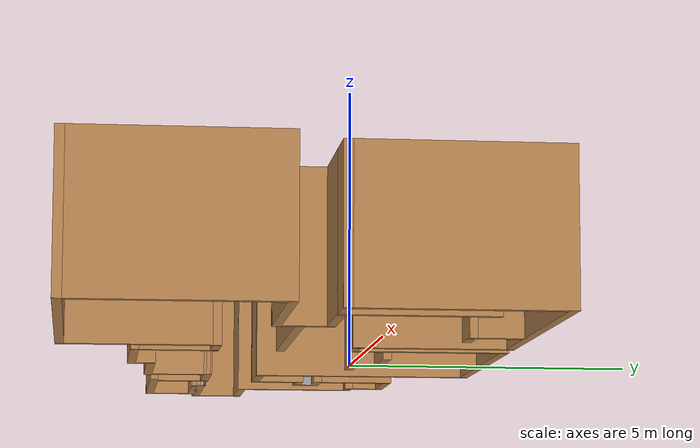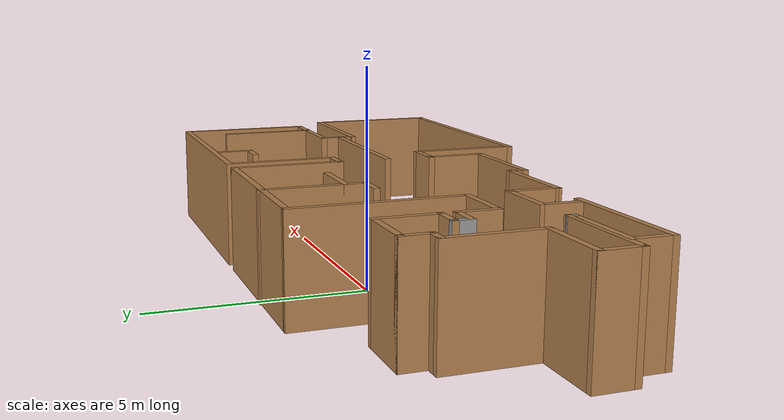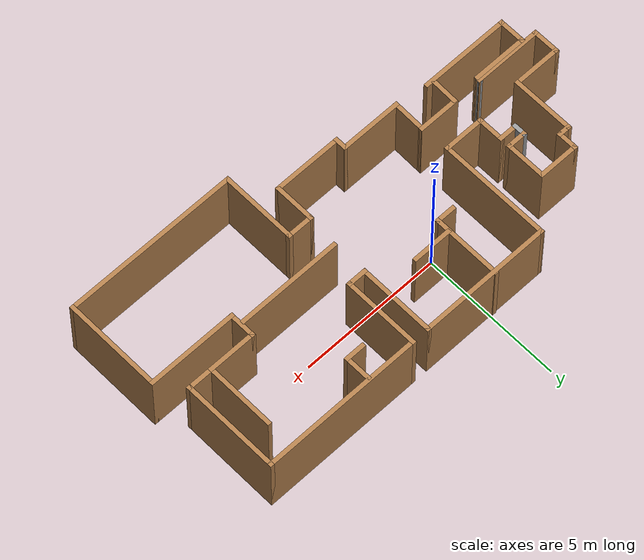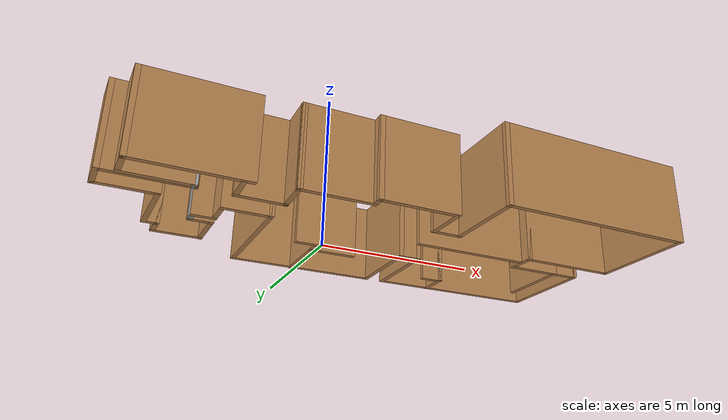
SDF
<?xml version='1.0'?>
<sdf version='1.6'>
  <model name='map_8'>
    <pose frame=''>1.34367 -1.36908 0 0 -0 0</pose>
    <link name='Wall_0'>
      <collision name='Wall_0_Collision'>
        <geometry>
          <box>
            <size>3.25 0.15 2.5</size>
          </box>
        </geometry>
        <pose frame=''>0 0 1.25 0 -0 0</pose>
      </collision>
      <visual name='Wall_0_Visual'>
        <pose frame=''>0 0 1.25 0 -0 0</pose>
        <geometry>
          <box>
            <size>3.25 0.15 2.5</size>
          </box>
        </geometry>
        <material>
          <script>
            <uri>file://media/materials/scripts/gazebo.material</uri>
            <name>Gazebo/Wood</name>
          </script>
          <ambient>1 1 1 1</ambient>
        </material>
        <meta>
          <layer>0</layer>
        </meta>
      </visual>
      <pose frame=''>-6.02588 -2.03852 0 0 -0 3.14159</pose>
    </link>
    <link name='Wall_1'>
      <collision name='Wall_1_Collision'>
        <geometry>
          <box>
            <size>1 0.15 2.5</size>
          </box>
        </geometry>
        <pose frame=''>0 0 1.25 0 -0 0</pose>
      </collision>
      <visual name='Wall_1_Visual'>
        <pose frame=''>0 0 1.25 0 -0 0</pose>
        <geometry>
          <box>
            <size>1 0.15 2.5</size>
          </box>
        </geometry>
        <material>
          <script>
            <uri>file://media/materials/scripts/gazebo.material</uri>
            <name>Gazebo/Wood</name>
          </script>
          <ambient>1 1 1 1</ambient>
        </material>
        <meta>
          <layer>0</layer>
        </meta>
      </visual>
      <pose frame=''>-7.57588 -1.61352 0 0 -0 1.5708</pose>
    </link>
    <link name='Wall_10'>
      <collision name='Wall_10_Collision'>
        <geometry>
          <box>
            <size>1.5 0.15 2.5</size>
          </box>
        </geometry>
        <pose frame=''>0 0 1.25 0 -0 0</pose>
      </collision>
      <visual name='Wall_10_Visual'>
        <pose frame=''>0 0 1.25 0 -0 0</pose>
        <geometry>
          <box>
            <size>1.5 0.15 2.5</size>
          </box>
        </geometry>
        <material>
          <script>
            <uri>file://media/materials/scripts/gazebo.material</uri>
            <name>Gazebo/Wood</name>
          </script>
          <ambient>1 1 1 1</ambient>
        </material>
        <meta>
          <layer>0</layer>
        </meta>
      </visual>
      <pose frame=''>-5.425 2.45807 0 0 -0 0</pose>
    </link>
    <link name='Wall_11'>
      <collision name='Wall_11_Collision'>
        <geometry>
          <box>
            <size>1.5 0.15 2.5</size>
          </box>
        </geometry>
        <pose frame=''>0 0 1.25 0 -0 0</pose>
      </collision>
      <visual name='Wall_11_Visual'>
        <pose frame=''>0 0 1.25 0 -0 0</pose>
        <geometry>
          <box>
            <size>1.5 0.15 2.5</size>
          </box>
        </geometry>
        <material>
          <script>
            <uri>file://media/materials/scripts/gazebo.material</uri>
            <name>Gazebo/Wood</name>
          </script>
          <ambient>1 1 1 1</ambient>
        </material>
        <meta>
          <layer>0</layer>
        </meta>
      </visual>
      <pose frame=''>-4.75 1.78307 0 0 -0 -1.5708</pose>
    </link>
    <link name='Wall_12'>
      <collision name='Wall_12_Collision'>
        <geometry>
          <box>
            <size>0.75 0.15 2.5</size>
          </box>
        </geometry>
        <pose frame=''>0 0 1.25 0 -0 0</pose>
      </collision>
      <visual name='Wall_12_Visual'>
        <pose frame=''>0 0 1.25 0 -0 0</pose>
        <geometry>
          <box>
            <size>0.75 0.15 2.5</size>
          </box>
        </geometry>
        <material>
          <script>
            <uri>file://media/materials/scripts/gazebo.material</uri>
            <name>Gazebo/Wood</name>
          </script>
          <ambient>1 1 1 1</ambient>
        </material>
        <meta>
          <layer>0</layer>
        </meta>
      </visual>
      <pose frame=''>-5.05 1.10807 0 0 -0 3.14159</pose>
    </link>
    <link name='Wall_13'>
      <collision name='Wall_13_Collision'>
        <geometry>
          <box>
            <size>0.5 0.15 2.5</size>
          </box>
        </geometry>
        <pose frame=''>0 0 1.25 0 -0 0</pose>
      </collision>
      <visual name='Wall_13_Visual'>
        <pose frame=''>0 0 1.25 0 -0 0</pose>
        <geometry>
          <box>
            <size>0.5 0.15 2.5</size>
          </box>
        </geometry>
        <material>
          <script>
            <uri>file://media/materials/scripts/gazebo.material</uri>
            <name>Gazebo/Grey</name>
          </script>
          <ambient>1 1 1 1</ambient>
        </material>
        <meta>
          <layer>0</layer>
        </meta>
      </visual>
      <pose frame=''>-5.35 0.933071 0 0 -0 -1.5708</pose>
    </link>
    <link name='Wall_14'>
      <collision name='Wall_14_Collision'>
        <geometry>
          <box>
            <size>0.75 0.15 2.5</size>
          </box>
        </geometry>
        <pose frame=''>0 0 1.25 0 -0 0</pose>
      </collision>
      <visual name='Wall_14_Visual'>
        <pose frame=''>0 0 1.25 0 -0 0</pose>
        <geometry>
          <box>
            <size>0.75 0.15 2.5</size>
          </box>
        </geometry>
        <material>
          <script>
            <uri>file://media/materials/scripts/gazebo.material</uri>
            <name>Gazebo/Wood</name>
          </script>
          <ambient>1 1 1 1</ambient>
        </material>
        <meta>
          <layer>0</layer>
        </meta>
      </visual>
      <pose frame=''>-5.05 0.758071 0 0 -0 0</pose>
    </link>
    <link name='Wall_15'>
      <collision name='Wall_15_Collision'>
        <geometry>
          <box>
            <size>1 0.15 2.5</size>
          </box>
        </geometry>
        <pose frame=''>0 0 1.25 0 -0 0</pose>
      </collision>
      <visual name='Wall_15_Visual'>
        <pose frame=''>0 0 1.25 0 -0 0</pose>
        <geometry>
          <box>
            <size>1 0.15 2.5</size>
          </box>
        </geometry>
        <material>
          <script>
            <uri>file://media/materials/scripts/gazebo.material</uri>
            <name>Gazebo/Wood</name>
          </script>
          <ambient>1 1 1 1</ambient>
        </material>
        <meta>
          <layer>0</layer>
        </meta>
      </visual>
      <pose frame=''>-4.75 0.333071 0 0 -0 -1.5708</pose>
    </link>
    <link name='Wall_16'>
      <collision name='Wall_16_Collision'>
        <geometry>
          <box>
            <size>1.5 0.15 2.5</size>
          </box>
        </geometry>
        <pose frame=''>0 0 1.25 0 -0 0</pose>
      </collision>
      <visual name='Wall_16_Visual'>
        <pose frame=''>0 0 1.25 0 -0 0</pose>
        <geometry>
          <box>
            <size>1.5 0.15 2.5</size>
          </box>
        </geometry>
        <material>
          <script>
            <uri>file://media/materials/scripts/gazebo.material</uri>
            <name>Gazebo/Wood</name>
          </script>
          <ambient>1 1 1 1</ambient>
        </material>
        <meta>
          <layer>0</layer>
        </meta>
      </visual>
      <pose frame=''>-4.075 -0.091929 0 0 -0 0</pose>
    </link>
    <link name='Wall_17'>
      <collision name='Wall_17_Collision'>
        <geometry>
          <box>
            <size>4 0.15 2.5</size>
          </box>
        </geometry>
        <pose frame=''>0 0 1.25 0 -0 0</pose>
      </collision>
      <visual name='Wall_17_Visual'>
        <pose frame=''>0 0 1.25 0 -0 0</pose>
        <geometry>
          <box>
            <size>4 0.15 2.5</size>
          </box>
        </geometry>
        <material>
          <script>
            <uri>file://media/materials/scripts/gazebo.material</uri>
            <name>Gazebo/Wood</name>
          </script>
          <ambient>1 1 1 1</ambient>
        </material>
        <meta>
          <layer>0</layer>
        </meta>
      </visual>
      <pose frame=''>-3.4 1.83307 0 0 -0 1.5708</pose>
    </link>
    <link name='Wall_18'>
      <collision name='Wall_18_Collision'>
        <geometry>
          <box>
            <size>4.75 0.15 2.5</size>
          </box>
        </geometry>
        <pose frame=''>0 0 1.25 0 -0 0</pose>
      </collision>
      <visual name='Wall_18_Visual'>
        <pose frame=''>0 0 1.25 0 -0 0</pose>
        <geometry>
          <box>
            <size>4.75 0.15 2.5</size>
          </box>
        </geometry>
        <material>
          <script>
            <uri>file://media/materials/scripts/gazebo.material</uri>
            <name>Gazebo/Wood</name>
          </script>
          <ambient>1 1 1 1</ambient>
        </material>
        <meta>
          <layer>0</layer>
        </meta>
      </visual>
      <pose frame=''>-1.1 3.75807 0 0 -0 0</pose>
    </link>
    <link name='Wall_19'>
      <collision name='Wall_19_Collision'>
        <geometry>
          <box>
            <size>2.75 0.15 2.5</size>
          </box>
        </geometry>
        <pose frame=''>0 0 1.25 0 -0 0</pose>
      </collision>
      <visual name='Wall_19_Visual'>
        <pose frame=''>0 0 1.25 0 -0 0</pose>
        <geometry>
          <box>
            <size>2.75 0.15 2.5</size>
          </box>
        </geometry>
        <material>
          <script>
            <uri>file://media/materials/scripts/gazebo.material</uri>
            <name>Gazebo/Wood</name>
          </script>
          <ambient>1 1 1 1</ambient>
        </material>
        <meta>
          <layer>0</layer>
        </meta>
      </visual>
      <pose frame=''>1.2 2.45807 0 0 -0 -1.5708</pose>
    </link>
    <link name='Wall_2'>
      <collision name='Wall_2_Collision'>
        <geometry>
          <box>
            <size>2 0.15 2.5</size>
          </box>
        </geometry>
        <pose frame=''>0 0 1.25 0 -0 0</pose>
      </collision>
      <visual name='Wall_2_Visual'>
        <pose frame=''>0 0 1.25 0 -0 0</pose>
        <geometry>
          <box>
            <size>2 0.15 2.5</size>
          </box>
        </geometry>
        <material>
          <script>
            <uri>file://media/materials/scripts/gazebo.material</uri>
            <name>Gazebo/Wood</name>
          </script>
          <ambient>1 1 1 1</ambient>
        </material>
        <meta>
          <layer>0</layer>
        </meta>
      </visual>
      <pose frame=''>-6.65088 -1.18852 0 0 -0 0</pose>
    </link>
    <link name='Wall_20'>
      <collision name='Wall_20_Collision'>
        <geometry>
          <box>
            <size>0.75 0.15 2.5</size>
          </box>
        </geometry>
        <pose frame=''>0 0 1.25 0 -0 0</pose>
      </collision>
      <visual name='Wall_20_Visual'>
        <pose frame=''>0 0 1.25 0 -0 0</pose>
        <geometry>
          <box>
            <size>0.75 0.15 2.5</size>
          </box>
        </geometry>
        <material>
          <script>
            <uri>file://media/materials/scripts/gazebo.material</uri>
            <name>Gazebo/Wood</name>
          </script>
          <ambient>1 1 1 1</ambient>
        </material>
        <meta>
          <layer>0</layer>
        </meta>
      </visual>
      <pose frame=''>1.5 1.15807 0 0 -0 0</pose>
    </link>
    <link name='Wall_21'>
      <collision name='Wall_21_Collision'>
        <geometry>
          <box>
            <size>2.75 0.15 2.5</size>
          </box>
        </geometry>
        <pose frame=''>0 0 1.25 0 -0 0</pose>
      </collision>
      <visual name='Wall_21_Visual'>
        <pose frame=''>0 0 1.25 0 -0 0</pose>
        <geometry>
          <box>
            <size>2.75 0.15 2.5</size>
          </box>
        </geometry>
        <material>
          <script>
            <uri>file://media/materials/scripts/gazebo.material</uri>
            <name>Gazebo/Wood</name>
          </script>
          <ambient>1 1 1 1</ambient>
        </material>
        <meta>
          <layer>0</layer>
        </meta>
      </visual>
      <pose frame=''>1.8 2.45807 0 0 -0 1.5708</pose>
    </link>
    <link name='Wall_22'>
      <collision name='Wall_22_Collision'>
        <geometry>
          <box>
            <size>5.75 0.15 2.5</size>
          </box>
        </geometry>
        <pose frame=''>0 0 1.25 0 -0 0</pose>
      </collision>
      <visual name='Wall_22_Visual'>
        <pose frame=''>0 0 1.25 0 -0 0</pose>
        <geometry>
          <box>
            <size>5.75 0.15 2.5</size>
          </box>
        </geometry>
        <material>
          <script>
            <uri>file://media/materials/scripts/gazebo.material</uri>
            <name>Gazebo/Wood</name>
          </script>
          <ambient>1 1 1 1</ambient>
        </material>
        <meta>
          <layer>0</layer>
        </meta>
      </visual>
      <pose frame=''>4.6 3.75807 0 0 -0 0</pose>
    </link>
    <link name='Wall_23'>
      <collision name='Wall_23_Collision'>
        <geometry>
          <box>
            <size>3.5 0.15 2.5</size>
          </box>
        </geometry>
        <pose frame=''>0 0 1.25 0 -0 0</pose>
      </collision>
      <visual name='Wall_23_Visual'>
        <pose frame=''>0 0 1.25 0 -0 0</pose>
        <geometry>
          <box>
            <size>3.5 0.15 2.5</size>
          </box>
        </geometry>
        <material>
          <script>
            <uri>file://media/materials/scripts/gazebo.material</uri>
            <name>Gazebo/Wood</name>
          </script>
          <ambient>1 1 1 1</ambient>
        </material>
        <meta>
          <layer>0</layer>
        </meta>
      </visual>
      <pose frame=''>7.4 2.08307 0 0 -0 -1.5708</pose>
    </link>
    <link name='Wall_24'>
      <collision name='Wall_24_Collision'>
        <geometry>
          <box>
            <size>1 0.15 2.5</size>
          </box>
        </geometry>
        <pose frame=''>0 0 1.25 0 -0 0</pose>
      </collision>
      <visual name='Wall_24_Visual'>
        <pose frame=''>0 0 1.25 0 -0 0</pose>
        <geometry>
          <box>
            <size>1 0.15 2.5</size>
          </box>
        </geometry>
        <material>
          <script>
            <uri>file://media/materials/scripts/gazebo.material</uri>
            <name>Gazebo/Wood</name>
          </script>
          <ambient>1 1 1 1</ambient>
        </material>
        <meta>
          <layer>0</layer>
        </meta>
      </visual>
      <pose frame=''>6.975 0.408071 0 0 -0 3.14159</pose>
    </link>
    <link name='Wall_25'>
      <collision name='Wall_25_Collision'>
        <geometry>
          <box>
            <size>2.5 0.15 2.5</size>
          </box>
        </geometry>
        <pose frame=''>0 0 1.25 0 -0 0</pose>
      </collision>
      <visual name='Wall_25_Visual'>
        <pose frame=''>0 0 1.25 0 -0 0</pose>
        <geometry>
          <box>
            <size>2.5 0.15 2.5</size>
          </box>
        </geometry>
        <material>
          <script>
            <uri>file://media/materials/scripts/gazebo.material</uri>
            <name>Gazebo/Wood</name>
          </script>
          <ambient>1 1 1 1</ambient>
        </material>
        <meta>
          <layer>0</layer>
        </meta>
      </visual>
      <pose frame=''>6.55 1.58307 0 0 -0 1.5708</pose>
    </link>
    <link name='Wall_27'>
      <collision name='Wall_27_Collision'>
        <geometry>
          <box>
            <size>1.75 0.15 2.5</size>
          </box>
        </geometry>
        <pose frame=''>0 0 1.25 0 -0 0</pose>
      </collision>
      <visual name='Wall_27_Visual'>
        <pose frame=''>0 0 1.25 0 -0 0</pose>
        <geometry>
          <box>
            <size>1.75 0.15 2.5</size>
          </box>
        </geometry>
        <material>
          <script>
            <uri>file://media/materials/scripts/gazebo.material</uri>
            <name>Gazebo/Wood</name>
          </script>
          <ambient>1 1 1 1</ambient>
        </material>
        <meta>
          <layer>0</layer>
        </meta>
      </visual>
      <pose frame=''>5.75 0.408071 0 0 -0 3.14159</pose>
    </link>
    <link name='Wall_28'>
      <collision name='Wall_28_Collision'>
        <geometry>
          <box>
            <size>1 0.15 2.5</size>
          </box>
        </geometry>
        <pose frame=''>0 0 1.25 0 -0 0</pose>
      </collision>
      <visual name='Wall_28_Visual'>
        <pose frame=''>0 0 1.25 0 -0 0</pose>
        <geometry>
          <box>
            <size>1 0.15 2.5</size>
          </box>
        </geometry>
        <material>
          <script>
            <uri>file://media/materials/scripts/gazebo.material</uri>
            <name>Gazebo/Wood</name>
          </script>
          <ambient>1 1 1 1</ambient>
        </material>
        <meta>
          <layer>0</layer>
        </meta>
      </visual>
      <pose frame=''>4.95 -0.016929 0 0 -0 -1.5708</pose>
    </link>
    <link name='Wall_29'>
      <collision name='Wall_29_Collision'>
        <geometry>
          <box>
            <size>3.25 0.15 2.5</size>
          </box>
        </geometry>
        <pose frame=''>0 0 1.25 0 -0 0</pose>
      </collision>
      <visual name='Wall_29_Visual'>
        <pose frame=''>0 0 1.25 0 -0 0</pose>
        <geometry>
          <box>
            <size>3.25 0.15 2.5</size>
          </box>
        </geometry>
        <material>
          <script>
            <uri>file://media/materials/scripts/gazebo.material</uri>
            <name>Gazebo/Wood</name>
          </script>
          <ambient>1 1 1 1</ambient>
        </material>
        <meta>
          <layer>0</layer>
        </meta>
      </visual>
      <pose frame=''>6.5 -0.441929 0 0 -0 0</pose>
    </link>
    <link name='Wall_3'>
      <collision name='Wall_3_Collision'>
        <geometry>
          <box>
            <size>0.25 0.15 2.5</size>
          </box>
        </geometry>
        <pose frame=''>0 0 1.25 0 -0 0</pose>
      </collision>
      <visual name='Wall_3_Visual'>
        <pose frame=''>0 0 1.25 0 -0 0</pose>
        <geometry>
          <box>
            <size>0.25 0.15 2.5</size>
          </box>
        </geometry>
        <material>
          <script>
            <uri>file://media/materials/scripts/gazebo.material</uri>
            <name>Gazebo/Grey</name>
          </script>
          <ambient>1 1 1 1</ambient>
        </material>
        <meta>
          <layer>0</layer>
        </meta>
      </visual>
      <pose frame=''>-5.71294 -1.14023 0 0 -0 1.309</pose>
    </link>
    <link name='Wall_30'>
      <collision name='Wall_30_Collision'>
        <geometry>
          <box>
            <size>3.5 0.15 2.5</size>
          </box>
        </geometry>
        <pose frame=''>0 0 1.25 0 -0 0</pose>
      </collision>
      <visual name='Wall_30_Visual'>
        <pose frame=''>0 0 1.25 0 -0 0</pose>
        <geometry>
          <box>
            <size>3.5 0.15 2.5</size>
          </box>
        </geometry>
        <material>
          <script>
            <uri>file://media/materials/scripts/gazebo.material</uri>
            <name>Gazebo/Wood</name>
          </script>
          <ambient>1 1 1 1</ambient>
        </material>
        <meta>
          <layer>0</layer>
        </meta>
      </visual>
      <pose frame=''>8.05 -2.11693 0 0 -0 -1.5708</pose>
    </link>
    <link name='Wall_31'>
      <collision name='Wall_31_Collision'>
        <geometry>
          <box>
            <size>6.25 0.15 2.5</size>
          </box>
        </geometry>
        <pose frame=''>0 0 1.25 0 -0 0</pose>
      </collision>
      <visual name='Wall_31_Visual'>
        <pose frame=''>0 0 1.25 0 -0 0</pose>
        <geometry>
          <box>
            <size>6.25 0.15 2.5</size>
          </box>
        </geometry>
        <material>
          <script>
            <uri>file://media/materials/scripts/gazebo.material</uri>
            <name>Gazebo/Wood</name>
          </script>
          <ambient>1 1 1 1</ambient>
        </material>
        <meta>
          <layer>0</layer>
        </meta>
      </visual>
      <pose frame=''>5 -3.79193 0 0 -0 3.14159</pose>
    </link>
    <link name='Wall_32'>
      <collision name='Wall_32_Collision'>
        <geometry>
          <box>
            <size>2.75 0.15 2.5</size>
          </box>
        </geometry>
        <pose frame=''>0 0 1.25 0 -0 0</pose>
      </collision>
      <visual name='Wall_32_Visual'>
        <pose frame=''>0 0 1.25 0 -0 0</pose>
        <geometry>
          <box>
            <size>2.75 0.15 2.5</size>
          </box>
        </geometry>
        <material>
          <script>
            <uri>file://media/materials/scripts/gazebo.material</uri>
            <name>Gazebo/Wood</name>
          </script>
          <ambient>1 1 1 1</ambient>
        </material>
        <meta>
          <layer>0</layer>
        </meta>
      </visual>
      <pose frame=''>1.95 -2.49193 0 0 -0 1.5708</pose>
    </link>
    <link name='Wall_33'>
      <collision name='Wall_33_Collision'>
        <geometry>
          <box>
            <size>1 0.15 2.5</size>
          </box>
        </geometry>
        <pose frame=''>0 0 1.25 0 -0 0</pose>
      </collision>
      <visual name='Wall_33_Visual'>
        <pose frame=''>0 0 1.25 0 -0 0</pose>
        <geometry>
          <box>
            <size>1 0.15 2.5</size>
          </box>
        </geometry>
        <material>
          <script>
            <uri>file://media/materials/scripts/gazebo.material</uri>
            <name>Gazebo/Wood</name>
          </script>
          <ambient>1 1 1 1</ambient>
        </material>
        <meta>
          <layer>0</layer>
        </meta>
      </visual>
      <pose frame=''>1.525 -1.19193 0 0 -0 3.14159</pose>
    </link>
    <link name='Wall_34'>
      <collision name='Wall_34_Collision'>
        <geometry>
          <box>
            <size>1.5 0.15 2.5</size>
          </box>
        </geometry>
        <pose frame=''>0 0 1.25 0 -0 0</pose>
      </collision>
      <visual name='Wall_34_Visual'>
        <pose frame=''>0 0 1.25 0 -0 0</pose>
        <geometry>
          <box>
            <size>1.5 0.15 2.5</size>
          </box>
        </geometry>
        <material>
          <script>
            <uri>file://media/materials/scripts/gazebo.material</uri>
            <name>Gazebo/Wood</name>
          </script>
          <ambient>1 1 1 1</ambient>
        </material>
        <meta>
          <layer>0</layer>
        </meta>
      </visual>
      <pose frame=''>1.1 -1.86693 0 0 -0 -1.5708</pose>
    </link>
    <link name='Wall_35'>
      <collision name='Wall_35_Collision'>
        <geometry>
          <box>
            <size>2.5 0.15 2.5</size>
          </box>
        </geometry>
        <pose frame=''>0 0 1.25 0 -0 0</pose>
      </collision>
      <visual name='Wall_35_Visual'>
        <pose frame=''>0 0 1.25 0 -0 0</pose>
        <geometry>
          <box>
            <size>2.5 0.15 2.5</size>
          </box>
        </geometry>
        <material>
          <script>
            <uri>file://media/materials/scripts/gazebo.material</uri>
            <name>Gazebo/Wood</name>
          </script>
          <ambient>1 1 1 1</ambient>
        </material>
        <meta>
          <layer>0</layer>
        </meta>
      </visual>
      <pose frame=''>-0.075 -2.54193 0 0 -0 3.14159</pose>
    </link>
    <link name='Wall_36'>
      <collision name='Wall_36_Collision'>
        <geometry>
          <box>
            <size>0.5 0.15 2.5</size>
          </box>
        </geometry>
        <pose frame=''>0 0 1.25 0 -0 0</pose>
      </collision>
      <visual name='Wall_36_Visual'>
        <pose frame=''>0 0 1.25 0 -0 0</pose>
        <geometry>
          <box>
            <size>0.5 0.15 2.5</size>
          </box>
        </geometry>
        <material>
          <script>
            <uri>file://media/materials/scripts/gazebo.material</uri>
            <name>Gazebo/Wood</name>
          </script>
          <ambient>1 1 1 1</ambient>
        </material>
        <meta>
          <layer>0</layer>
        </meta>
      </visual>
      <pose frame=''>-1.25 -2.36693 0 0 -0 1.5708</pose>
    </link>
    <link name='Wall_37'>
      <collision name='Wall_37_Collision'>
        <geometry>
          <box>
            <size>2.25 0.15 2.5</size>
          </box>
        </geometry>
        <pose frame=''>0 0 1.25 0 -0 0</pose>
      </collision>
      <visual name='Wall_37_Visual'>
        <pose frame=''>0 0 1.25 0 -0 0</pose>
        <geometry>
          <box>
            <size>2.25 0.15 2.5</size>
          </box>
        </geometry>
        <material>
          <script>
            <uri>file://media/materials/scripts/gazebo.material</uri>
            <name>Gazebo/Wood</name>
          </script>
          <ambient>1 1 1 1</ambient>
        </material>
        <meta>
          <layer>0</layer>
        </meta>
      </visual>
      <pose frame=''>-2.3 -2.19193 0 0 -0 3.14159</pose>
    </link>
    <link name='Wall_38'>
      <collision name='Wall_38_Collision'>
        <geometry>
          <box>
            <size>1.23432 0.15 2.5</size>
          </box>
        </geometry>
        <pose frame=''>0 0 1.25 0 -0 0</pose>
      </collision>
      <visual name='Wall_38_Visual'>
        <pose frame=''>0 0 1.25 0 -0 0</pose>
        <geometry>
          <box>
            <size>1.23432 0.15 2.5</size>
          </box>
        </geometry>
        <material>
          <script>
            <uri>file://media/materials/scripts/gazebo.material</uri>
            <name>Gazebo/Wood</name>
          </script>
          <ambient>1 1 1 1</ambient>
        </material>
        <meta>
          <layer>0</layer>
        </meta>
      </visual>
      <pose frame=''>-3.3367 -1.64993 0 0 -0 1.54626</pose>
    </link>
    <link name='Wall_39'>
      <collision name='Wall_39_Collision'>
        <geometry>
          <box>
            <size>1.5 0.15 2.5</size>
          </box>
        </geometry>
        <pose frame=''>0 0 1.25 0 -0 0</pose>
      </collision>
      <visual name='Wall_39_Visual'>
        <pose frame=''>0 0 1.25 0 -0 0</pose>
        <geometry>
          <box>
            <size>1.5 0.15 2.5</size>
          </box>
        </geometry>
        <material>
          <script>
            <uri>file://media/materials/scripts/gazebo.material</uri>
            <name>Gazebo/Wood</name>
          </script>
          <ambient>1 1 1 1</ambient>
        </material>
        <meta>
          <layer>0</layer>
        </meta>
      </visual>
      <pose frame=''>-3.9984 -1.08133 0 0 -0 3.14159</pose>
    </link>
    <link name='Wall_4'>
      <collision name='Wall_4_Collision'>
        <geometry>
          <box>
            <size>2.5 0.15 2.5</size>
          </box>
        </geometry>
        <pose frame=''>0 0 1.25 0 -0 0</pose>
      </collision>
      <visual name='Wall_4_Visual'>
        <pose frame=''>0 0 1.25 0 -0 0</pose>
        <geometry>
          <box>
            <size>2.5 0.15 2.5</size>
          </box>
        </geometry>
        <material>
          <script>
            <uri>file://media/materials/scripts/gazebo.material</uri>
            <name>Gazebo/Wood</name>
          </script>
          <ambient>1 1 1 1</ambient>
        </material>
        <meta>
          <layer>0</layer>
        </meta>
      </visual>
      <pose frame=''>-6.875 -1.09193 0 0 -0 3.14159</pose>
    </link>
    <link name='Wall_40'>
      <collision name='Wall_40_Collision'>
        <geometry>
          <box>
            <size>0.984422 0.15 2.5</size>
          </box>
        </geometry>
        <pose frame=''>0 0 1.25 0 -0 0</pose>
      </collision>
      <visual name='Wall_40_Visual'>
        <pose frame=''>0 0 1.25 0 -0 0</pose>
        <geometry>
          <box>
            <size>0.984422 0.15 2.5</size>
          </box>
        </geometry>
        <material>
          <script>
            <uri>file://media/materials/scripts/gazebo.material</uri>
            <name>Gazebo/Wood</name>
          </script>
          <ambient>1 1 1 1</ambient>
        </material>
        <meta>
          <layer>0</layer>
        </meta>
      </visual>
      <pose frame=''>-4.6867 -1.52493 0 0 -0 -1.60268</pose>
    </link>
    <link name='Wall_42'>
      <collision name='Wall_42_Collision'>
        <geometry>
          <box>
            <size>2.5 0.15 2.5</size>
          </box>
        </geometry>
        <pose frame=''>0 0 1.25 0 -0 0</pose>
      </collision>
      <visual name='Wall_42_Visual'>
        <pose frame=''>0 0 1.25 0 -0 0</pose>
        <geometry>
          <box>
            <size>2.5 0.15 2.5</size>
          </box>
        </geometry>
        <material>
          <script>
            <uri>file://media/materials/scripts/gazebo.material</uri>
            <name>Gazebo/Wood</name>
          </script>
          <ambient>1 1 1 1</ambient>
        </material>
        <meta>
          <layer>0</layer>
        </meta>
      </visual>
      <pose frame=''>-1.49184 2.61693 0 0 -0 -1.5708</pose>
    </link>
    <link name='Wall_43'>
      <collision name='Wall_43_Collision'>
        <geometry>
          <box>
            <size>0.75 0.15 2.5</size>
          </box>
        </geometry>
        <pose frame=''>0 0 1.25 0 -0 0</pose>
      </collision>
      <visual name='Wall_43_Visual'>
        <pose frame=''>0 0 1.25 0 -0 0</pose>
        <geometry>
          <box>
            <size>0.75 0.15 2.5</size>
          </box>
        </geometry>
        <material>
          <script>
            <uri>file://media/materials/scripts/gazebo.material</uri>
            <name>Gazebo/Wood</name>
          </script>
          <ambient>1 1 1 1</ambient>
        </material>
        <meta>
          <layer>0</layer>
        </meta>
      </visual>
      <pose frame=''>-1.79184 1.44193 0 0 -0 3.14159</pose>
    </link>
    <link name='Wall_45'>
      <collision name='Wall_45_Collision'>
        <geometry>
          <box>
            <size>1.5 0.15 2.5</size>
          </box>
        </geometry>
        <pose frame=''>0 0 1.25 0 -0 0</pose>
      </collision>
      <visual name='Wall_45_Visual'>
        <pose frame=''>0 0 1.25 0 -0 0</pose>
        <geometry>
          <box>
            <size>1.5 0.15 2.5</size>
          </box>
        </geometry>
        <material>
          <script>
            <uri>file://media/materials/scripts/gazebo.material</uri>
            <name>Gazebo/Wood</name>
          </script>
          <ambient>1 1 1 1</ambient>
        </material>
        <meta>
          <layer>0</layer>
        </meta>
      </visual>
      <pose frame=''>-0.816842 1.90125 0 0 -0 0</pose>
    </link>
    <link name='Wall_47'>
      <collision name='Wall_47_Collision'>
        <geometry>
          <box>
            <size>1 0.15 2.5</size>
          </box>
        </geometry>
        <pose frame=''>0 0 1.25 0 -0 0</pose>
      </collision>
      <visual name='Wall_47_Visual'>
        <pose frame=''>0 0 1.25 0 -0 0</pose>
        <geometry>
          <box>
            <size>1 0.15 2.5</size>
          </box>
        </geometry>
        <material>
          <script>
            <uri>file://media/materials/scripts/gazebo.material</uri>
            <name>Gazebo/Wood</name>
          </script>
          <ambient>1 1 1 1</ambient>
        </material>
        <meta>
          <layer>0</layer>
        </meta>
      </visual>
      <pose frame=''>3.52821 3.27612 0 0 -0 -1.5708</pose>
    </link>
    <link name='Wall_48'>
      <collision name='Wall_48_Collision'>
        <geometry>
          <box>
            <size>0.75 0.15 2.5</size>
          </box>
        </geometry>
        <pose frame=''>0 0 1.25 0 -0 0</pose>
      </collision>
      <visual name='Wall_48_Visual'>
        <pose frame=''>0 0 1.25 0 -0 0</pose>
        <geometry>
          <box>
            <size>0.75 0.15 2.5</size>
          </box>
        </geometry>
        <material>
          <script>
            <uri>file://media/materials/scripts/gazebo.material</uri>
            <name>Gazebo/Wood</name>
          </script>
          <ambient>1 1 1 1</ambient>
        </material>
        <meta>
          <layer>0</layer>
        </meta>
      </visual>
      <pose frame=''>3.22821 2.85112 0 0 -0 3.14159</pose>
    </link>
    <link name='Wall_5'>
      <collision name='Wall_5_Collision'>
        <geometry>
          <box>
            <size>1 0.15 2.5</size>
          </box>
        </geometry>
        <pose frame=''>0 0 1.25 0 -0 0</pose>
      </collision>
      <visual name='Wall_5_Visual'>
        <pose frame=''>0 0 1.25 0 -0 0</pose>
        <geometry>
          <box>
            <size>1 0.15 2.5</size>
          </box>
        </geometry>
        <material>
          <script>
            <uri>file://media/materials/scripts/gazebo.material</uri>
            <name>Gazebo/Wood</name>
          </script>
          <ambient>1 1 1 1</ambient>
        </material>
        <meta>
          <layer>0</layer>
        </meta>
      </visual>
      <pose frame=''>-8.05 -0.666929 0 0 -0 1.5708</pose>
    </link>
    <link name='Wall_50'>
      <collision name='Wall_50_Collision'>
        <geometry>
          <box>
            <size>3.75 0.15 2.5</size>
          </box>
        </geometry>
        <pose frame=''>0 0 1.25 0 -0 0</pose>
      </collision>
      <visual name='Wall_50_Visual'>
        <pose frame=''>0 0 1.25 0 -0 0</pose>
        <geometry>
          <box>
            <size>3.75 0.15 2.5</size>
          </box>
        </geometry>
        <material>
          <script>
            <uri>file://media/materials/scripts/gazebo.material</uri>
            <name>Gazebo/Wood</name>
          </script>
          <ambient>1 1 1 1</ambient>
        </material>
        <meta>
          <layer>0</layer>
        </meta>
      </visual>
      <pose frame=''>3.03162 -0.076112 0 0 -0 3.14159</pose>
    </link>
    <link name='Wall_6'>
      <collision name='Wall_6_Collision'>
        <geometry>
          <box>
            <size>1.75 0.15 2.5</size>
          </box>
        </geometry>
        <pose frame=''>0 0 1.25 0 -0 0</pose>
      </collision>
      <visual name='Wall_6_Visual'>
        <pose frame=''>0 0 1.25 0 -0 0</pose>
        <geometry>
          <box>
            <size>1.75 0.15 2.5</size>
          </box>
        </geometry>
        <material>
          <script>
            <uri>file://media/materials/scripts/gazebo.material</uri>
            <name>Gazebo/Wood</name>
          </script>
          <ambient>1 1 1 1</ambient>
        </material>
        <meta>
          <layer>0</layer>
        </meta>
      </visual>
      <pose frame=''>-7.25 -0.241929 0 0 -0 0</pose>
    </link>
    <link name='Wall_7'>
      <collision name='Wall_7_Collision'>
        <geometry>
          <box>
            <size>2.25 0.15 2.5</size>
          </box>
        </geometry>
        <pose frame=''>0 0 1.25 0 -0 0</pose>
      </collision>
      <visual name='Wall_7_Visual'>
        <pose frame=''>0 0 1.25 0 -0 0</pose>
        <geometry>
          <box>
            <size>2.25 0.15 2.5</size>
          </box>
        </geometry>
        <material>
          <script>
            <uri>file://media/materials/scripts/gazebo.material</uri>
            <name>Gazebo/Wood</name>
          </script>
          <ambient>1 1 1 1</ambient>
        </material>
        <meta>
          <layer>0</layer>
        </meta>
      </visual>
      <pose frame=''>-6.45 0.808071 0 0 -0 1.5708</pose>
    </link>
    <link name='Wall_8'>
      <collision name='Wall_8_Collision'>
        <geometry>
          <box>
            <size>0.5 0.15 2.5</size>
          </box>
        </geometry>
        <pose frame=''>0 0 1.25 0 -0 0</pose>
      </collision>
      <visual name='Wall_8_Visual'>
        <pose frame=''>0 0 1.25 0 -0 0</pose>
        <geometry>
          <box>
            <size>0.5 0.15 2.5</size>
          </box>
        </geometry>
        <material>
          <script>
            <uri>file://media/materials/scripts/gazebo.material</uri>
            <name>Gazebo/Wood</name>
          </script>
          <ambient>1 1 1 1</ambient>
        </material>
        <meta>
          <layer>0</layer>
        </meta>
      </visual>
      <pose frame=''>-6.275 1.85807 0 0 -0 0</pose>
    </link>
    <link name='Wall_9'>
      <collision name='Wall_9_Collision'>
        <geometry>
          <box>
            <size>0.75 0.15 2.5</size>
          </box>
        </geometry>
        <pose frame=''>0 0 1.25 0 -0 0</pose>
      </collision>
      <visual name='Wall_9_Visual'>
        <pose frame=''>0 0 1.25 0 -0 0</pose>
        <geometry>
          <box>
            <size>0.75 0.15 2.5</size>
          </box>
        </geometry>
        <material>
          <script>
            <uri>file://media/materials/scripts/gazebo.material</uri>
            <name>Gazebo/Wood</name>
          </script>
          <ambient>1 1 1 1</ambient>
        </material>
        <meta>
          <layer>0</layer>
        </meta>
      </visual>
      <pose frame=''>-6.1 2.15807 0 0 -0 1.5708</pose>
    </link>
    <static>1</static>
  </model>
</sdf>
